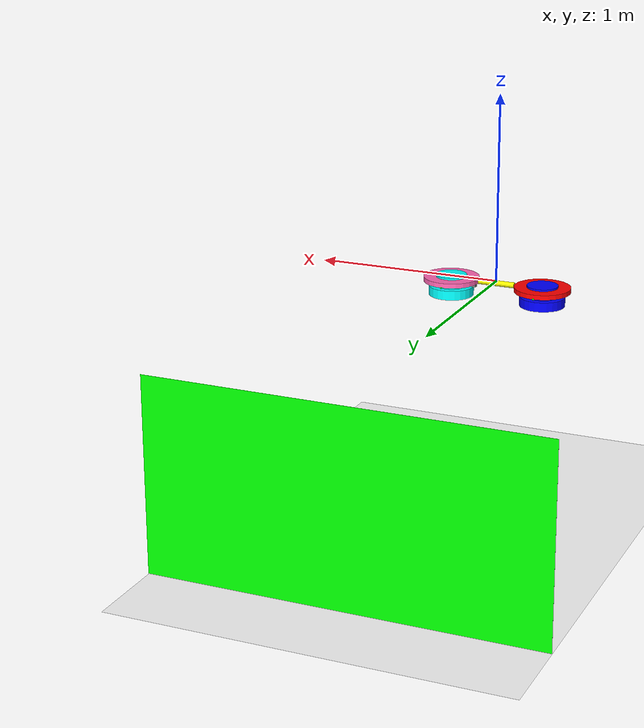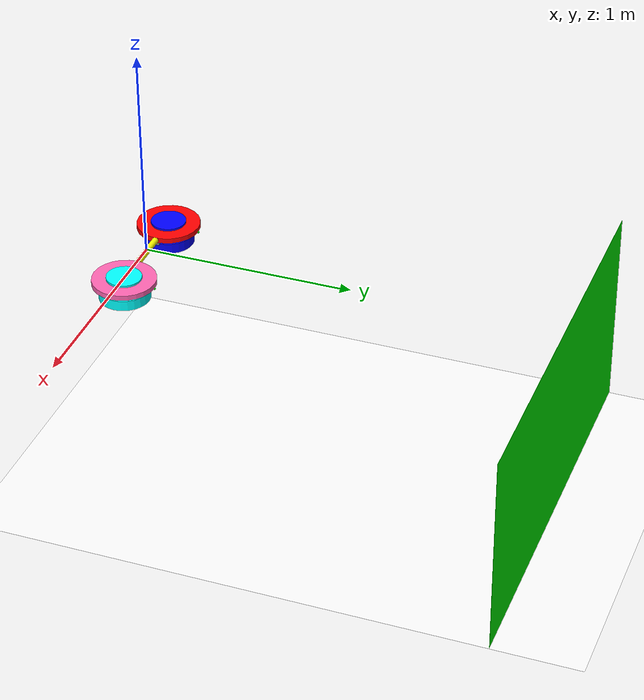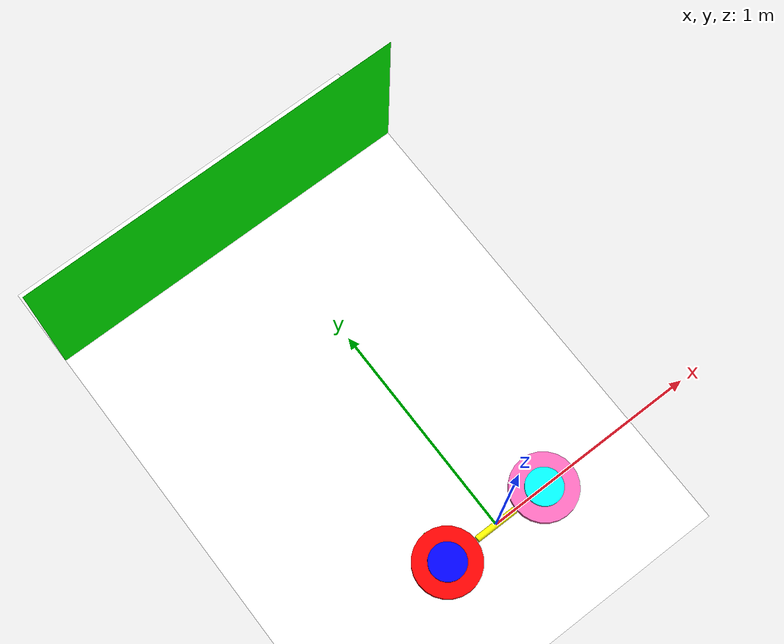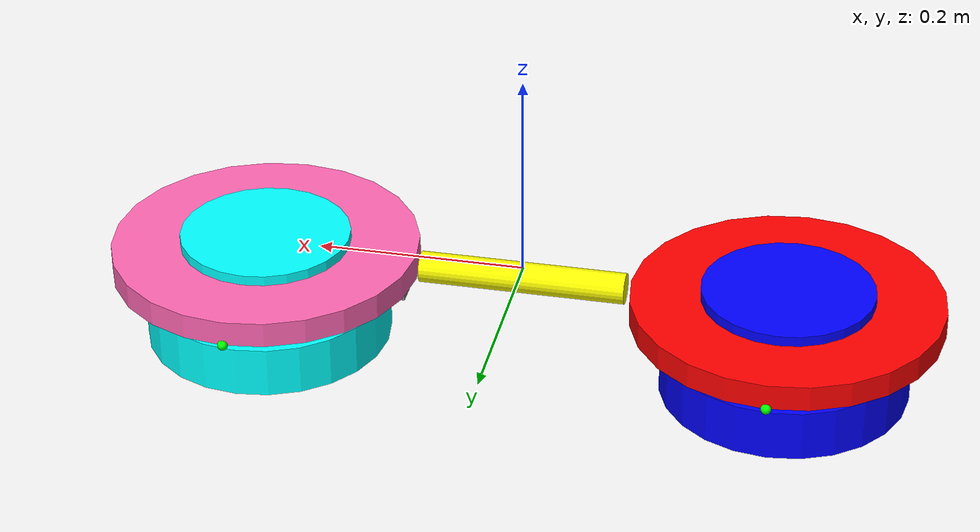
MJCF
<!-- The Lappa robot -->
<mujoco>
    <!-- set options to simulate underwater environment  -->
    <option density="900" viscosity=" 0.0009" />
    <include file="lappa_model.xml"/>
	<worldbody>
		<geom name="floor" pos="0 1 -1" size="1 1.5 .2" type="plane" conaffinity="1" rgba="1 1 1 1"
			condim="3" />
            <!-- vertical wall in the center of the floor -->
        <geom name="wall" pos="0 2 -.5" size=".5 1 2" type="plane" conaffinity="1" rgba="0 1 0 1"
            condim="3" euler="90 0 90" />
            <!-- horizontal wall in the center of the floor -->
	</worldbody>
</mujoco>

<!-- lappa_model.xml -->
<!-- The Lappa robot -->
<mujoco model="Lappa">
	<worldbody>
		<body name="root" pos="0 0 0">
			<joint name="root" type="free" />
			<geom name="core" type="cylinder" fromto="-.075 0 -.01 .075 0 -.01" size=".01" mass=".0001" />
            <body name="arm" pos="0 0 -.01">
                <geom name="arm" type="cylinder" fromto="-.1 0 0 .1 0 0" size=".015" rgba="1 1 0 1" mass=".002" />
                <body name="a_connect" pos="-.075 0 0" >
                    <geom name="a_box" type="box" size=".01 .01 .01" mass=".001" />
                </body>
                <body name="b_connect" pos=".075 0 0">
                    <geom name="b_box" type="box" size=".01 .01 .01" mass=".001" />
                </body>
            </body>
            <body name="a_module" pos="-.255 0 0">
                <geom name="a_house" type="cylinder" fromto="0 0 -.025 0 0 0" size=".15" rgba="1 0 0 1" mass=".002" />
                <geom name="a_motor_sim" type="box" size=".01 .01 .01" pos=".13 0 -.035" mass=".0005" />
                <joint type="hinge" name="a_h2" axis="0 1 0" pos=".15 0 0" limited="true" range="-90 90" stiffness="-.35" />
                <joint type="hinge" name="a_h3" axis="1 0 0" pos=".15 0 0" limited="true" range="-90 90" stiffness=".5" />
                <site name="a_rangefinder_forward" pos="0 .15 -.025" euler="-90 0 0" rgba="0 1 0 1" />
                <site name="a_rangefinder_down" pos="0 0 -.101" euler="180 0 0" rgba="0 1 0 1" />
                <site name="a_pressure" pos=".01 0 -.1" euler="180 0 0" rgba="1 0 0 1" />
                <body name="a_chamber">
                    <joint type="hinge" name="a_h1" axis="0 0 1" />
                    <geom name="a_chamber1" type="cylinder" fromto="0 0 .01 0 0 -.051" size=".083" rgba="0 0 1 1" mass=".002" />
                    <geom name="a_chamber2" type="cylinder" fromto="0 0 -.05 0 0 -.1" size=".12" rgba="0 0 1 1" mass=".1" />
                    <site name="a_propeller" pos="0 0 -.05" />
                </body>
            </body>
            <body name="b_module" pos=".255 0 0">
                <geom name="b_house" type="cylinder" fromto="0 0 -.025 0 0 0" size=".15" rgba="1 .4 .7 1" mass=".002" />
                <geom name="b_motor_sim" type="box" size=".01 .01 .01" pos="-.13 0 -.035" mass=".0005" />
                <joint type="hinge" name="b_h2" axis="0 1 0" pos="-.15 0 0" limited="true" range="-90 90" stiffness="-.35" />
                <joint type="hinge" name="b_h3" axis="1 0 0" pos="-.15 0 0" limited="true" range="-90 90" stiffness=".5" />
                <site name="b_rangefinder_forward" pos="0 .15 -.025" euler="-90 0 0" rgba="0 1 0 1" />
                <site name="b_rangefinder_down" pos="0 0 -.101" euler="180 0 0" rgba="0 1 0 1" />
                <site name="b_pressure" pos=".01 0 -.1" euler="180 0 0" rgba="1 0 0 1" />
                <body name="b_chamber">
                    <joint type="hinge" name="b_h1" axis="0 0 1" />
                    <geom name="b_chamber1" type="cylinder" fromto="0 0 .01 0 0 -.051" size=".083" rgba="0 1 1 1" mass=".002" />
                    <geom name="b_chamber2" type="cylinder" fromto="0 0 -.05 0 0 -.1" size=".12" rgba="0 1 1 1" mass=".1" />
                    <site name="b_propeller" pos="0 0 -.05" />
                </body>
            </body>
		</body>
	</worldbody>
    <sensor>
        <rangefinder name="a_rangefinder_forward" site="a_rangefinder_forward" />
        <rangefinder name="a_rangefinder_down" site="a_rangefinder_down" />
        <rangefinder name="b_rangefinder_forward" site="b_rangefinder_forward" />
        <rangefinder name="b_rangefinder_down" site="b_rangefinder_down" />
        <jointpos name="a_h1" joint="a_h1" />
        <jointpos name="b_h1" joint="b_h1" />
        <jointpos name="a_h2" joint="a_h2" />
        <jointpos name="b_h2" joint="b_h2" />
        <jointpos name="a_h3" joint="a_h3" />
        <jointpos name="b_h3" joint="b_h3" />
        <force name="a_pressure" site="a_pressure" />
        <force name="b_pressure" site="b_pressure" />
    </sensor>
	<equality>
        <connect body1="a_connect" body2="a_module" anchor="0 0 0" />
        <connect body1="b_connect" body2="b_module" anchor="0 0 0" />
	</equality>
	<actuator>
        <motor name="a_thrust" site="a_propeller" ctrllimited="true" ctrlrange="-1. 1." gear="0 0 20"  />
        <motor name="b_thrust" site="b_propeller" ctrllimited="true" ctrlrange="-1. 1." gear="0 0 20"  />
        <motor name="a_rotor" joint="a_h1" gear="-1" />
        <motor name="b_rotor" joint="b_h1" gear="1"  />
	</actuator>
</mujoco>
